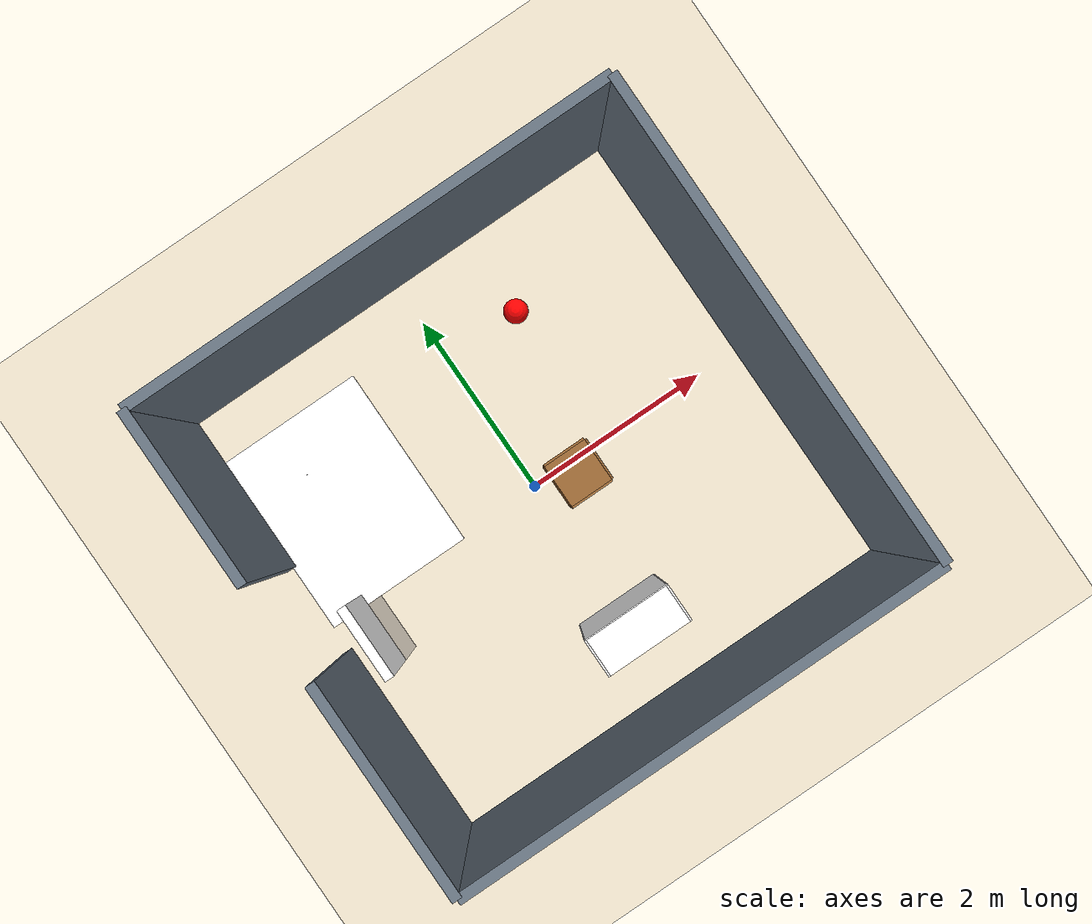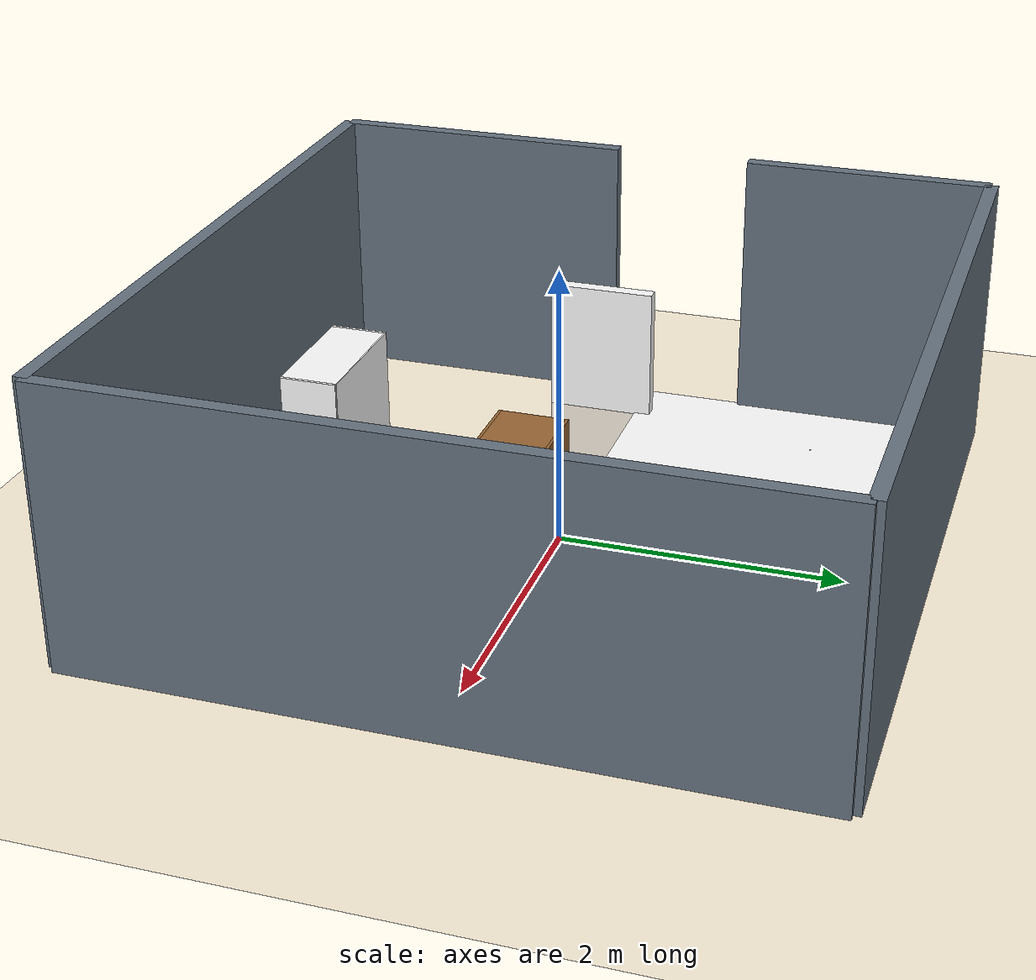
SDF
<sdf version="1.7">
 <world name="default">
  <plugin name="ignition::gazebo::systems::Physics" filename="libignition-gazebo-physics-system.so"/>
  <plugin name="ignition::gazebo::systems::UserCommands" filename="libignition-gazebo-user-commands-system.so"/>
  <plugin name="ignition::gazebo::systems::SceneBroadcaster" filename="libignition-gazebo-scene-broadcaster-system.so"/>
  <plugin name="ignition::gazebo::systems::Imu" filename="ignition-gazebo-imu-system"/>
  <plugin name="ignition::gazebo::systems::Sensors" filename="ignition-gazebo-sensors-system">
   <render_engine>ogre2</render_engine>
  </plugin>
  <scene>
   <ambient>0.6 0.6 0.6 1</ambient>
   <background>0.7 0.7 0.7 1</background>
   <shadows>1</shadows>
   <grid>false</grid>
   <sky><clouds><speed>12</speed></clouds></sky>
  </scene>
  <light name="top_dist_light" type="directional">
   <pose>0 0 10 0 0 0</pose>
   <diffuse>0.5 0.5 0.5 1</diffuse>
   <specular>0.1 0.1 0.1 1</specular>
   <direction>0.1 0.1 -1</direction>
  </light>
  <light name="fill_light_1" type="point">
   <pose>-2 2 2.5 0 0 0</pose>
   <diffuse>0.2 0.2 0.2 1</diffuse>
   <attenuation><range>20</range><constant>0.8</constant><linear>0.05</linear></attenuation>
   <cast_shadows>0</cast_shadows>
  </light>
  <light name="fill_light_2" type="point">
   <pose>2 -2 2.5 0 0 0</pose>
   <diffuse>0.2 0.2 0.2 1</diffuse>
   <attenuation><range>20</range><constant>0.8</constant><linear>0.05</linear></attenuation>
   <cast_shadows>0</cast_shadows>
  </light>
  <model name="ground_plane">
   <static>1</static>
   <link name="link">
    <collision name="collision">
     <geometry><plane><normal>0 0 1</normal><size>100 100</size></plane></geometry>
     <surface><friction><ode><mu>1.0</mu><mu2>1.0</mu2></ode></friction></surface>
    </collision>
    <visual name="visual">
     <cast_shadows>0</cast_shadows>
     <geometry><plane><normal>0 0 1</normal><size>100 100</size></plane></geometry>
     <material>
      <ambient>0.82 0.71 0.55 1</ambient>
      <diffuse>0.82 0.71 0.55 1</diffuse>
      <specular>0.1 0.1 0.1 1</specular>
      <pbr><metal><roughness>0.7</roughness><metalness>0.0</metalness></metal></pbr>
     </material>
    </visual>
   </link>
  </model>
  <gravity>0 0 -9.8</gravity>
  <magnetic_field>6e-06 2.3e-05 -4.2e-05</magnetic_field>
  <atmosphere type="adiabatic"/>
  <physics type="ode">
   <max_step_size>0.001</max_step_size>
   <real_time_factor>1</real_time_factor>
   <real_time_update_rate>1000</real_time_update_rate>
  </physics>
  <audio><device>default</device></audio>
  <spherical_coordinates>
   <surface_model>EARTH_WGS84</surface_model>
   <latitude_deg>0</latitude_deg>
   <longitude_deg>0</longitude_deg>
   <elevation>0</elevation>
   <heading_deg>0</heading_deg>
  </spherical_coordinates>
  <model name="Bookshelf">
   <static>1</static>
   <link name="link">
    <inertial><mass>1</mass></inertial>
    <collision name="back">
     <pose>0 0.005 0.6 0 -0 0</pose>
     <geometry><box><size>0.9 0.01 1.2</size></box></geometry>
    </collision>
    <visual name="visual1">
     <pose>0 0.005 0.6 0 -0 0</pose>
     <geometry><box><size>0.9 0.01 1.2</size></box></geometry>
     <material>
      <diffuse>1 1 1 1</diffuse>
      <ambient>0.8 0.8 0.8 1</ambient>
      <specular>0.2 0.2 0.2 1</specular>
      <pbr>
       <metal>
        <albedo_map>https://fuel.gazebosim.org/1.0/openrobotics/models/bookshelf/3/files/bookshelf_diffuse.jpg</albedo_map>
        <roughness>0.8</roughness>
        <metalness>0.0</metalness>
       </metal>
      </pbr>
     </material>
    </visual>
    <collision name="left_side">
     <pose>0.45 -0.195 0.6 0 -0 0</pose>
     <geometry><box><size>0.02 0.4 1.2</size></box></geometry>
    </collision>
    <visual name="visual2">
     <pose>0.45 -0.195 0.6 0 -0 0</pose>
     <geometry><box><size>0.02 0.4 1.2</size></box></geometry>
     <material>
      <diffuse>1 1 1 1</diffuse>
      <ambient>1 1 1 1</ambient>
      <specular>0.2 0.2 0.2 1</specular>
      <pbr>
       <metal>
        <albedo_map>https://fuel.gazebosim.org/1.0/openrobotics/models/bookshelf/3/files/bookshelf_diffuse.jpg</albedo_map>
        <roughness>0.8</roughness>
        <metalness>0.0</metalness>
       </metal>
      </pbr>
     </material>
    </visual>
    <collision name="right_side">
     <pose>-0.45 -0.195 0.6 0 -0 0</pose>
     <geometry><box><size>0.02 0.4 1.2</size></box></geometry>
    </collision>
    <visual name="visual3">
     <pose>-0.45 -0.195 0.6 0 -0 0</pose>
     <geometry><box><size>0.02 0.4 1.2</size></box></geometry>
     <material>
      <diffuse>1 1 1 1</diffuse>
      <ambient>1 1 1 1</ambient>
      <specular>0.2 0.2 0.2 1</specular>
      <pbr>
       <metal>
        <albedo_map>https://fuel.gazebosim.org/1.0/openrobotics/models/bookshelf/3/files/bookshelf_diffuse.jpg</albedo_map>
        <roughness>0.8</roughness>
        <metalness>0.0</metalness>
       </metal>
      </pbr>
     </material>
    </visual>
    <collision name="bottom">
     <pose>0 -0.195 0.03 0 -0 0</pose>
     <geometry><box><size>0.88 0.4 0.06</size></box></geometry>
    </collision>
    <visual name="visual4">
     <pose>0 -0.195 0.03 0 -0 0</pose>
     <geometry><box><size>0.88 0.4 0.06</size></box></geometry>
     <material>
      <diffuse>1 1 1 1</diffuse>
      <ambient>1 1 1 1</ambient>
      <specular>0.2 0.2 0.2 1</specular>
      <pbr>
       <metal>
        <albedo_map>https://fuel.gazebosim.org/1.0/openrobotics/models/bookshelf/3/files/bookshelf_diffuse.jpg</albedo_map>
        <roughness>0.8</roughness>
        <metalness>0.0</metalness>
       </metal>
      </pbr>
     </material>
    </visual>
    <collision name="top">
     <pose>0 -0.195 1.19 0 -0 0</pose>
     <geometry><box><size>0.88 0.4 0.02</size></box></geometry>
    </collision>
    <visual name="visual5">
     <pose>0 -0.195 1.19 0 -0 0</pose>
     <geometry><box><size>0.88 0.4 0.02</size></box></geometry>
     <material>
      <diffuse>1 1 1 1</diffuse>
      <ambient>1 1 1 1</ambient>
      <specular>0.2 0.2 0.2 1</specular>
      <pbr>
       <metal>
        <albedo_map>https://fuel.gazebosim.org/1.0/openrobotics/models/bookshelf/3/files/bookshelf_diffuse.jpg</albedo_map>
        <roughness>0.8</roughness>
        <metalness>0.0</metalness>
       </metal>
      </pbr>
     </material>
    </visual>
    <collision name="low_shelf">
     <pose>0 -0.195 0.43 0 -0 0</pose>
     <geometry><box><size>0.88 0.4 0.02</size></box></geometry>
    </collision>
    <visual name="visual6">
     <pose>0 -0.195 0.43 0 -0 0</pose>
     <geometry><box><size>0.88 0.4 0.02</size></box></geometry>
     <material>
      <diffuse>1 1 1 1</diffuse>
      <ambient>1 1 1 1</ambient>
      <specular>0.2 0.2 0.2 1</specular>
      <pbr>
       <metal>
        <albedo_map>https://fuel.gazebosim.org/1.0/openrobotics/models/bookshelf/3/files/bookshelf_diffuse.jpg</albedo_map>
        <roughness>0.8</roughness>
        <metalness>0.0</metalness>
       </metal>
      </pbr>
     </material>
    </visual>
    <collision name="high_shelf">
     <pose>0 -0.195 0.8 0 -0 0</pose>
     <geometry><box><size>0.88 0.4 0.02</size></box></geometry>
    </collision>
    <visual name="visual7">
     <pose>0 -0.195 0.8 0 -0 0</pose>
     <geometry><box><size>0.88 0.4 0.02</size></box></geometry>
     <material>
      <diffuse>1 1 1 1</diffuse>
      <ambient>1 1 1 1</ambient>
      <specular>0.2 0.2 0.2 1</specular>
      <pbr>
       <metal>
        <albedo_map>https://fuel.gazebosim.org/1.0/openrobotics/models/bookshelf/3/files/bookshelf_diffuse.jpg</albedo_map>
        <roughness>0.8</roughness>
        <metalness>0.0</metalness>
       </metal>
      </pbr>
     </material>
    </visual>
   </link>
   <pose>0.038494 -1.41548 0 0 -0 0</pose>
  </model>
  <model name="cabinet">
   <static>1</static>
   <link name="cabinet_bottom_plate">
    <inertial>
     <pose>0 0 -1 0 -0 0</pose>
     <inertia><ixx>2.05</ixx><ixy>0</ixy><ixz>0</ixz><iyy>2.05</iyy><iyz>0</iyz><izz>2.05</izz></inertia>
     <mass>25</mass>
    </inertial>
    <collision name="cabinet_bottom_plate_geom">
     <pose>0 0 0.01 0 -0 0</pose>
     <geometry><box><size>0.45 0.45 0.02</size></box></geometry>
    </collision>
    <visual name="cabinet_bottom_plate_geom_visual">
     <pose>0 0 0.01 0 -0 0</pose>
     <geometry><box><size>0.45 0.45 0.02</size></box></geometry>
     <material>
      <diffuse>0.6 0.4 0.2 1</diffuse>
      <ambient>0.6 0.4 0.2 1</ambient>
      <specular>0.1 0.1 0.1 1</specular>
      <pbr><metal><roughness>0.8</roughness><metalness>0.0</metalness></metal></pbr>
     </material>
    </visual>
    <collision name="cabinet_bottom_plate_geom_cabinet_back_plate">
     <pose>0.235 0 0.51 0 -0 0</pose>
     <geometry><box><size>0.02 0.45 1.02</size></box></geometry>
    </collision>
    <visual name="cabinet_bottom_plate_geom_cabinet_back_plate_visual">
     <pose>0.235 0 0.51 0 -0 0</pose>
     <geometry><box><size>0.02 0.45 1.02</size></box></geometry>
     <material>
      <diffuse>0.6 0.4 0.2 1</diffuse>
      <ambient>0.6 0.4 0.2 1</ambient>
      <specular>0.1 0.1 0.1 1</specular>
      <pbr><metal><roughness>0.8</roughness><metalness>0.0</metalness></metal></pbr>
     </material>
    </visual>
    <collision name="cabinet_bottom_plate_geom_cabinet_left_plate">
     <pose>0 0.235 0.51 0 -0 0</pose>
     <geometry><box><size>0.45 0.02 1.02</size></box></geometry>
    </collision>
    <visual name="cabinet_bottom_plate_geom_cabinet_left_plate_visual">
     <pose>0 0.235 0.51 0 -0 0</pose>
     <geometry><box><size>0.45 0.02 1.02</size></box></geometry>
     <material>
      <diffuse>0.6 0.4 0.2 1</diffuse>
      <ambient>0.6 0.4 0.2 1</ambient>
      <specular>0.1 0.1 0.1 1</specular>
      <pbr><metal><roughness>0.8</roughness><metalness>0.0</metalness></metal></pbr>
     </material>
    </visual>
    <collision name="cabinet_bottom_plate_geom_cabinet_middle_plate">
     <pose>0 0 0.51 0 -0 0</pose>
     <geometry><box><size>0.45 0.45 0.02</size></box></geometry>
    </collision>
    <visual name="cabinet_bottom_plate_geom_cabinet_middle_plate_visual">
     <pose>0 0 0.51 0 -0 0</pose>
     <geometry><box><size>0.45 0.45 0.02</size></box></geometry>
     <material>
      <diffuse>0.6 0.4 0.2 1</diffuse>
      <ambient>0.6 0.4 0.2 1</ambient>
      <specular>0.1 0.1 0.1 1</specular>
      <pbr><metal><roughness>0.8</roughness><metalness>0.0</metalness></metal></pbr>
     </material>
    </visual>
    <collision name="cabinet_bottom_plate_geom_cabinet_right_plate">
     <pose>0 -0.235 0.51 0 -0 0</pose>
     <geometry><box><size>0.45 0.02 1.02</size></box></geometry>
    </collision>
    <visual name="cabinet_bottom_plate_geom_cabinet_right_plate_visual">
     <pose>0 -0.235 0.51 0 -0 0</pose>
     <geometry><box><size>0.45 0.02 1.02</size></box></geometry>
     <material>
      <diffuse>0.6 0.4 0.2 1</diffuse>
      <ambient>0.6 0.4 0.2 1</ambient>
      <specular>0.1 0.1 0.1 1</specular>
      <pbr><metal><roughness>0.8</roughness><metalness>0.0</metalness></metal></pbr>
     </material>
    </visual>
    <collision name="cabinet_bottom_plate_geom_cabinet_top_plate">
     <pose>0 0 1.01 0 -0 0</pose>
     <geometry><box><size>0.45 0.45 0.02</size></box></geometry>
    </collision>
    <visual name="cabinet_bottom_plate_geom_cabinet_top_plate_visual">
     <pose>0 0 1.01 0 -0 0</pose>
     <geometry><box><size>0.45 0.45 0.02</size></box></geometry>
     <material>
      <diffuse>0.6 0.4 0.2 1</diffuse>
      <ambient>0.6 0.4 0.2 1</ambient>
      <specular>0.1 0.1 0.1 1</specular>
      <pbr><metal><roughness>0.8</roughness><metalness>0.0</metalness></metal></pbr>
     </material>
    </visual>
   </link>
   <pose>0.402214 -0.12139 0 0 -0 0</pose>
  </model>
  <model name="door_08x2m_0">
   <link name="link">
    <visual name="visual">
     <geometry><box><size>0.1 0.8 2</size></box></geometry>
     <material>
      <diffuse>1 1 1 1</diffuse>
      <ambient>1 1 1 1</ambient>
      <specular>0.2 0.2 0.2 1</specular>
      <pbr><metal><roughness>0.6</roughness><metalness>0.0</metalness></metal></pbr>
     </material>
    </visual>
   </link>
   <static>1</static>
   <pose>-2.1175 -0.31181 0 0 -0 0</pose>
  </model>
  <model name="living_room">
   <static>1</static>
   <pose>-1.83596 1.40391 0 0 0 0</pose>
   <link name="dummy_link">
    <visual name="dummy_visual"><geometry><box><size>0.01 0.01 0.01</size></box></geometry></visual>
   </link>
  </model>
  <model name="room_wall_2x5_part1">
   <static>1</static>
   <pose>-2.5 -1.4 1 0 0 0</pose>
   <link name="link">
    <collision name="collision"><geometry><box><size>0.1 2.2 2</size></box></geometry></collision>
    <visual name="visual">
     <geometry><box><size>0.1 2.2 2</size></box></geometry>
     <material>
      <ambient>0.4 0.45 0.5 1</ambient>
      <diffuse>0.4 0.45 0.5 1</diffuse>
      <specular>0 0 0 1</specular>
      <pbr><metal><roughness>1.0</roughness></metal></pbr>
     </material>
    </visual>
   </link>
  </model>
  <model name="room_wall_2x5_part2">
   <static>1</static>
   <pose>-2.5 1.6 1 0 0 0</pose>
   <link name="link">
    <collision name="collision"><geometry><box><size>0.1 1.8 2</size></box></geometry></collision>
    <visual name="visual">
     <geometry><box><size>0.1 1.8 2</size></box></geometry>
     <material>
      <ambient>0.4 0.45 0.5 1</ambient>
      <diffuse>0.4 0.45 0.5 1</diffuse>
      <specular>0 0 0 1</specular>
      <pbr><metal><roughness>1.0</roughness></metal></pbr>
     </material>
    </visual>
   </link>
  </model>
  <model name="room_wall_2x5_0">
   <link name="link">
    <visual name="visual">
     <geometry><box><size>0.1 5 2</size></box></geometry>
     <material>
      <ambient>0.4 0.45 0.5 1</ambient>
      <diffuse>0.4 0.45 0.5 1</diffuse>
      <specular>0 0 0 1</specular>
      <pbr><metal><roughness>1.0</roughness></metal></pbr>
     </material>
    </visual>
    <collision name="collision"><geometry><box><size>0.1 5 2</size></box></geometry></collision>
   </link>
   <static>1</static>
   <pose>2.5 0 1 0 0 0</pose>
  </model>
  <model name="room_wall_2x5_1">
   <link name="link">
    <visual name="visual">
     <geometry><box><size>0.1 5 2</size></box></geometry>
     <material>
      <ambient>0.4 0.45 0.5 1</ambient>
      <diffuse>0.4 0.45 0.5 1</diffuse>
      <specular>0 0 0 1</specular>
      <pbr><metal><roughness>1.0</roughness></metal></pbr>
     </material>
    </visual>
    <collision name="collision"><geometry><box><size>0.1 5 2</size></box></geometry></collision>
   </link>
   <static>1</static>
   <pose>0 -2.5 1 0 0 1.5708</pose>
  </model>
  <model name="room_wall_2x5_2">
   <link name="link">
    <visual name="visual">
     <geometry><box><size>0.1 5 2</size></box></geometry>
     <material>
      <ambient>0.4 0.45 0.5 1</ambient>
      <diffuse>0.4 0.45 0.5 1</diffuse>
      <specular>0 0 0 1</specular>
      <pbr><metal><roughness>1.0</roughness></metal></pbr>
     </material>
    </visual>
    <collision name="collision"><geometry><box><size>0.1 5 2</size></box></geometry></collision>
   </link>
   <static>1</static>
   <pose>0 2.5 1 0 0 1.5708</pose>
  </model>
  <model name="rug_ivory_2m_0">
   <link name="link">
    <visual name="visual">
     <geometry><box><size>1.6 2 0.005</size></box></geometry>
     <material>
      <diffuse>1 1 1 1</diffuse>
      <ambient>1 1 1 1</ambient>
      <specular>0.1 0.1 0.1 1</specular>
      <pbr><metal><roughness>0.9</roughness><metalness>0.0</metalness></metal></pbr>
     </material>
    </visual>
   </link>
   <static>1</static>
   <pose>-1.68463 0.969564 0 0 -0 0</pose>
  </model>
  <model name="red_ball_10in">
   <pose>0.83729 1.5589 0.127 0 -0 0</pose>
   <link name="link">
    <inertial>
     <mass>0.213</mass>
     <inertia>
      <ixx>0.00322667</ixx>
      <ixy>0</ixy>
      <ixz>0</ixz>
      <iyy>0.00322667</iyy>
      <iyz>0</iyz>
      <izz>0.00322667</izz>
     </inertia>
    </inertial>
    <visual name="visual">
     <geometry><sphere><radius>0.127</radius></sphere></geometry>
     <material>
      <diffuse>1.0 0.0 0.0 1.0</diffuse>
      <ambient>1.0 0.0 0.0 1.0</ambient>
      <specular>0.5 0.5 0.5 1</specular>
      <pbr><metal><roughness>0.5</roughness><metalness>0.0</metalness></metal></pbr>
     </material>
    </visual>
    <collision name="collision">
     <geometry><sphere><radius>0.127</radius></sphere></geometry>
     <surface>
      <bounce><restitution_coefficient>0.15937</restitution_coefficient><threshold>0</threshold></bounce>
      <contact><ode><max_vel>100</max_vel><min_depth>0.001</min_depth></ode></contact>
     </surface>
    </collision>
   </link>
  </model>
 </world>
</sdf>
